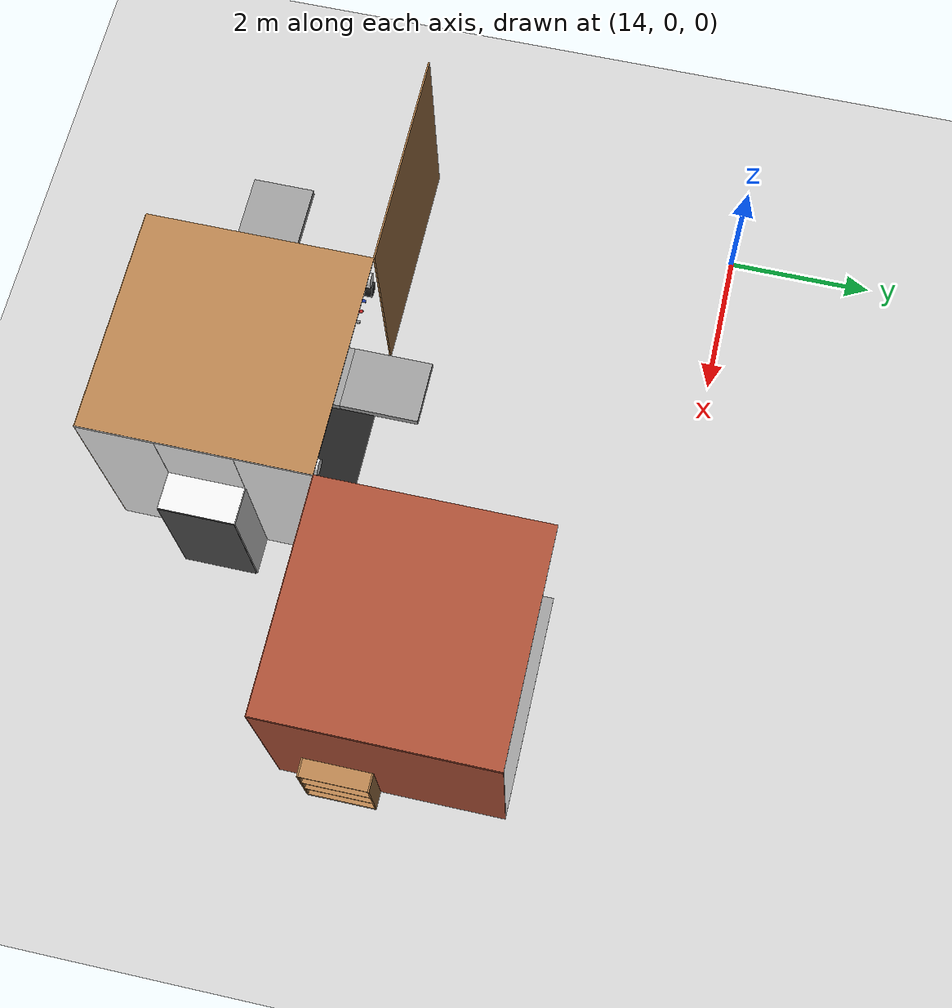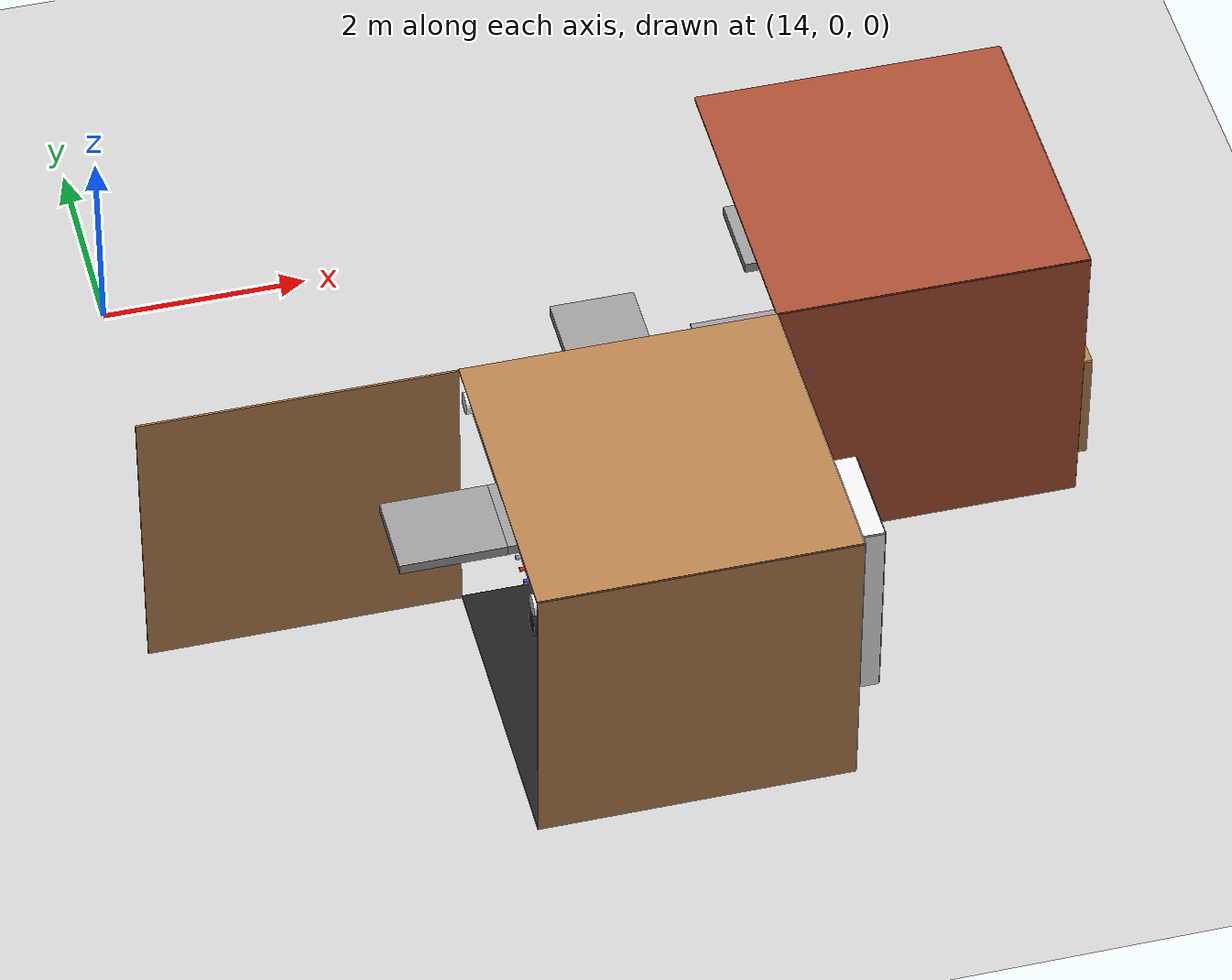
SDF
<sdf version="1.6">
 <world name="default">
  <model name="ground_plane">
   <static>1</static>
   <link name="link">
    <collision name="collision">
     <geometry><plane><normal>0 0 1</normal><size>200 200</size></plane></geometry>
     <surface><friction><ode><mu>100</mu><mu2>50</mu2></ode></friction></surface>
    </collision>
    <visual name="visual">
     <cast_shadows>0</cast_shadows>
     <geometry><plane><normal>0 0 1</normal><size>200 200</size></plane></geometry>
     <material>
      <script><uri>file://media/materials/scripts/gazebo.material</uri><name>Gazebo/Grey</name></script>
     </material>
    </visual>
   </link>
  </model>
  <model name="wall_front_7_-1_0_2">
   <static>1</static>
   <pose>21.0 -4.5 1.5 0.0 0.0 3.14</pose>
   <link name="link">
    <collision name="collision"><geometry><box><size>3 0.02 3</size></box></geometry></collision>
    <visual name="visual">
     <material>
      <script><name>Gazebo/Bricks</name><uri>file://media/materials/scripts/gazebo.material</uri></script>
     </material>
     <geometry><box><size>3 0.02 3</size></box></geometry>
    </visual>
   </link>
  </model>
  <model name="wall_left_7_-1_0_2">
   <static>1</static>
   <pose>22.5 -3.0 1.5 0.0 0.0 4.71</pose>
   <link name="link">
    <collision name="collision"><geometry><box><size>3 0.02 3</size></box></geometry></collision>
    <visual name="visual">
     <material>
      <script><name>Gazebo/Bricks</name><uri>file://media/materials/scripts/gazebo.material</uri></script>
     </material>
     <geometry><box><size>3 0.02 3</size></box></geometry>
    </visual>
   </link>
  </model>
  <model name="wall_top_7_-1_0_2">
   <static>1</static>
   <pose>21.0 -3.0 3.0 1.57 0.0 3.14</pose>
   <link name="link">
    <collision name="collision"><geometry><box><size>3 0.02 3</size></box></geometry></collision>
    <visual name="visual">
     <material>
      <script><name>Gazebo/Bricks</name><uri>file://media/materials/scripts/gazebo.material</uri></script>
     </material>
     <geometry><box><size>3 0.02 3</size></box></geometry>
    </visual>
   </link>
  </model>
  <model name="ceiling_1_7_-1_1_2">
   <pose>20.0 -3.0 2.55 0.0 0.0 4.71</pose>
   <link name="link_1">
    <visual name="visual">
     <geometry><box><size>0.8 1 0.1</size></box></geometry>
     <material>
      <script><uri>file://media/materials/scripts/gazebo.material</uri><name>Gazebo/Grey</name></script>
     </material>
    </visual>
    <collision name="collision"><geometry><box><size>0.8 1 0.1</size></box></geometry></collision>
   </link>
   <static>1</static>
  </model>
  <model name="bookshelf_7_-1_0_2">
   <static>true</static>
   <pose>22.35 -3.6063581885775 0.0 0.0 0.0 3.14</pose>
   <link name="link">
    <pose>0 0 0 0 0 -1.57</pose>
    <inertial><mass>1.0</mass></inertial>
    <collision name="back">
     <pose>0 0.005 0.6 0 0 0</pose>
     <geometry><box><size>0.9 0.01 1.2</size></box></geometry>
    </collision>
    <visual name="visual1">
     <pose>0 0.005 0.6 0 0 0</pose>
     <geometry><box><size>0.9 0.01 1.2</size></box></geometry>
     <material>
      <script><uri>file://media/materials/scripts/gazebo.material</uri><name>Gazebo/Wood</name></script>
     </material>
    </visual>
    <collision name="left_side">
     <pose>0.45 -0.195 0.6 0 0 0</pose>
     <geometry><box><size>0.02 0.4 1.2</size></box></geometry>
    </collision>
    <visual name="visual2">
     <pose>0.45 -0.195 0.6 0 0 0</pose>
     <geometry><box><size>0.02 0.4 1.2</size></box></geometry>
     <material>
      <script><uri>file://media/materials/scripts/gazebo.material</uri><name>Gazebo/Wood</name></script>
     </material>
    </visual>
    <collision name="right_side">
     <pose>-0.45 -0.195 0.6 0 0 0</pose>
     <geometry><box><size>0.02 0.4 1.2</size></box></geometry>
    </collision>
    <visual name="visual3">
     <pose>-0.45 -0.195 0.6 0 0 0</pose>
     <geometry><box><size>0.02 0.4 1.2</size></box></geometry>
     <material>
      <script><uri>file://media/materials/scripts/gazebo.material</uri><name>Gazebo/Wood</name></script>
     </material>
    </visual>
    <collision name="bottom">
     <pose>0 -0.195 0.03 0 0 0</pose>
     <geometry><box><size>0.88 0.4 0.06</size></box></geometry>
    </collision>
    <visual name="visual4">
     <pose>0 -0.195 0.03 0 0 0</pose>
     <geometry><box><size>0.88 0.4 0.06</size></box></geometry>
     <material>
      <script><uri>file://media/materials/scripts/gazebo.material</uri><name>Gazebo/Wood</name></script>
     </material>
    </visual>
    <collision name="top">
     <pose>0 -0.195 1.19 0 0 0</pose>
     <geometry><box><size>0.88 0.4 0.02</size></box></geometry>
    </collision>
    <visual name="visual5">
     <pose>0 -0.195 1.19 0 0 0</pose>
     <geometry><box><size>0.88 0.4 0.02</size></box></geometry>
     <material>
      <script><uri>file://media/materials/scripts/gazebo.material</uri><name>Gazebo/Wood</name></script>
     </material>
    </visual>
    <collision name="low_shelf">
     <pose>0 -0.195 0.43 0 0 0</pose>
     <geometry><box><size>0.88 0.4 0.02</size></box></geometry>
    </collision>
    <visual name="visual6">
     <pose>0 -0.195 0.43 0 0 0</pose>
     <geometry><box><size>0.88 0.4 0.02</size></box></geometry>
     <material>
      <script><uri>file://media/materials/scripts/gazebo.material</uri><name>Gazebo/Wood</name></script>
     </material>
    </visual>
    <collision name="high_shelf">
     <pose>0 -0.195 0.8 0 0 0</pose>
     <geometry><box><size>0.88 0.4 0.02</size></box></geometry>
    </collision>
    <visual name="visual7">
     <pose>0 -0.195 0.8 0 0 0</pose>
     <geometry><box><size>0.88 0.4 0.02</size></box></geometry>
     <material>
      <script><uri>file://media/materials/scripts/gazebo.material</uri><name>Gazebo/Wood</name></script>
     </material>
    </visual>
   </link>
  </model>
  <model name="wall_bottom_7_-1_0_2">
   <static>1</static>
   <pose>21.0 -3.0 0.0 0.0 0.0 3.14</pose>
   <link name="link">
    <collision name="collision"><geometry><box><size>3 3 0.02</size></box></geometry></collision>
    <visual name="visual">
     <material>
      <script><name>Gazebo/Grey</name><uri>file://media/materials/scripts/gazebo.material</uri></script>
     </material>
     <geometry><box><size>3 3 0.02</size></box></geometry>
    </visual>
   </link>
  </model>
  <model name="ceiling_1_6_-1_1_3">
   <pose>18.0 -4.0 2.55 0.0 0.0 3.14</pose>
   <link name="link_1">
    <visual name="visual">
     <geometry><box><size>0.8 1 0.1</size></box></geometry>
     <material>
      <script><uri>file://media/materials/scripts/gazebo.material</uri><name>Gazebo/Grey</name></script>
     </material>
    </visual>
    <collision name="collision"><geometry><box><size>0.8 1 0.1</size></box></geometry></collision>
   </link>
   <static>1</static>
  </model>
  <model name="ceiling_1_6_-2_0_2">
   <pose>18.0 -5.0 2.55 0.0 0.0 3.14</pose>
   <link name="link_1">
    <visual name="visual">
     <geometry><box><size>0.8 1 0.1</size></box></geometry>
     <material>
      <script><uri>file://media/materials/scripts/gazebo.material</uri><name>Gazebo/Grey</name></script>
     </material>
    </visual>
    <collision name="collision"><geometry><box><size>0.8 1 0.1</size></box></geometry></collision>
   </link>
   <static>1</static>
  </model>
  <model name="ceiling_1_6_-2_1_2">
   <pose>17.0 -6.0 2.55 0.0 0.0 4.71</pose>
   <link name="link_1">
    <visual name="visual">
     <geometry><box><size>0.8 1 0.1</size></box></geometry>
     <material>
      <script><uri>file://media/materials/scripts/gazebo.material</uri><name>Gazebo/Grey</name></script>
     </material>
    </visual>
    <collision name="collision"><geometry><box><size>0.8 1 0.1</size></box></geometry></collision>
   </link>
   <static>1</static>
  </model>
  <model name="bookshelf_6_-2_0_2">
   <static>true</static>
   <pose>18 -7.4 0.0 0.0 0.0 -1.57</pose>
   <link name="link">
    <pose>0 0 0 0 0 -1.57</pose>
    <inertial><mass>1.0</mass></inertial>
    <collision name="back">
     <pose>0 0.005 0.6 0 0 0</pose>
     <geometry><box><size>0.9 0.01 1.2</size></box></geometry>
    </collision>
    <visual name="visual1">
     <pose>0 0.005 0.6 0 0 0</pose>
     <geometry><box><size>0.9 0.01 1.2</size></box></geometry>
     <material>
      <script><uri>file://media/materials/scripts/gazebo.material</uri><name>Gazebo/Wood</name></script>
     </material>
    </visual>
    <collision name="left_side">
     <pose>0.45 -0.195 0.6 0 0 0</pose>
     <geometry><box><size>0.02 0.4 1.2</size></box></geometry>
    </collision>
    <visual name="visual2">
     <pose>0.45 -0.195 0.6 0 0 0</pose>
     <geometry><box><size>0.02 0.4 1.2</size></box></geometry>
     <material>
      <script><uri>file://media/materials/scripts/gazebo.material</uri><name>Gazebo/Wood</name></script>
     </material>
    </visual>
    <collision name="right_side">
     <pose>-0.45 -0.195 0.6 0 0 0</pose>
     <geometry><box><size>0.02 0.4 1.2</size></box></geometry>
    </collision>
    <visual name="visual3">
     <pose>-0.45 -0.195 0.6 0 0 0</pose>
     <geometry><box><size>0.02 0.4 1.2</size></box></geometry>
     <material>
      <script><uri>file://media/materials/scripts/gazebo.material</uri><name>Gazebo/Wood</name></script>
     </material>
    </visual>
    <collision name="bottom">
     <pose>0 -0.195 0.03 0 0 0</pose>
     <geometry><box><size>0.88 0.4 0.06</size></box></geometry>
    </collision>
    <visual name="visual4">
     <pose>0 -0.195 0.03 0 0 0</pose>
     <geometry><box><size>0.88 0.4 0.06</size></box></geometry>
     <material>
      <script><uri>file://media/materials/scripts/gazebo.material</uri><name>Gazebo/Wood</name></script>
     </material>
    </visual>
    <collision name="top">
     <pose>0 -0.195 1.19 0 0 0</pose>
     <geometry><box><size>0.88 0.4 0.02</size></box></geometry>
    </collision>
    <visual name="visual5">
     <pose>0 -0.195 1.19 0 0 0</pose>
     <geometry><box><size>0.88 0.4 0.02</size></box></geometry>
     <material>
      <script><uri>file://media/materials/scripts/gazebo.material</uri><name>Gazebo/Wood</name></script>
     </material>
    </visual>
    <collision name="low_shelf">
     <pose>0 -0.195 0.43 0 0 0</pose>
     <geometry><box><size>0.88 0.4 0.02</size></box></geometry>
    </collision>
    <visual name="visual6">
     <pose>0 -0.195 0.43 0 0 0</pose>
     <geometry><box><size>0.88 0.4 0.02</size></box></geometry>
     <material>
      <script><uri>file://media/materials/scripts/gazebo.material</uri><name>Gazebo/Wood</name></script>
     </material>
    </visual>
    <collision name="high_shelf">
     <pose>0 -0.195 0.8 0 0 0</pose>
     <geometry><box><size>0.88 0.4 0.02</size></box></geometry>
    </collision>
    <visual name="visual7">
     <pose>0 -0.195 0.8 0 0 0</pose>
     <geometry><box><size>0.88 0.4 0.02</size></box></geometry>
     <material>
      <script><uri>file://media/materials/scripts/gazebo.material</uri><name>Gazebo/Wood</name></script>
     </material>
    </visual>
   </link>
  </model>
  <model name="ceiling_1_5_-2_1_1">
   <pose>16.0 -6.0 2.55 0.0 0.0 1.57</pose>
   <link name="link_1">
    <visual name="visual">
     <geometry><box><size>0.8 1 0.1</size></box></geometry>
     <material>
      <script><uri>file://media/materials/scripts/gazebo.material</uri><name>Gazebo/Grey</name></script>
     </material>
    </visual>
    <collision name="collision"><geometry><box><size>0.8 1 0.1</size></box></geometry></collision>
   </link>
   <static>1</static>
  </model>
  <model name="wall_front_6_-2_0_2">
   <static>1</static>
   <pose>18.0 -7.5 1.5 0.0 0.0 3.14</pose>
   <link name="link">
    <collision name="collision"><geometry><box><size>3 0.02 3</size></box></geometry></collision>
    <visual name="visual">
     <material>
      <script><name>Gazebo/Wood</name><uri>file://media/materials/scripts/gazebo.material</uri></script>
     </material>
     <geometry><box><size>3 0.02 3</size></box></geometry>
    </visual>
   </link>
  </model>
  <model name="wall_top_6_-2_0_2">
   <static>1</static>
   <pose>18.0 -6.0 3.0 1.57 0.0 3.14</pose>
   <link name="link">
    <collision name="collision"><geometry><box><size>3 0.02 3</size></box></geometry></collision>
    <visual name="visual">
     <material>
      <script><name>Gazebo/Wood</name><uri>file://media/materials/scripts/gazebo.material</uri></script>
     </material>
     <geometry><box><size>3 0.02 3</size></box></geometry>
    </visual>
   </link>
  </model>
  <model name="white_pipe_left_6_-2_0_2">
   <static>1</static>
   <pose>18.0 -6.0 2.76 0.0 0.0 3.14</pose>
   <link name="link_0">
    <visual name="visual">
     <pose>-1.3 0 0 1.57 0 0</pose>
     <geometry><cylinder><radius>0.1</radius><length>3</length></cylinder></geometry>
     <material>
      <script><uri>file://media/materials/scripts/gazebo.material</uri><name>Gazebo/White</name></script>
     </material>
    </visual>
    <collision name="collision">
     <pose>-1.3 0 0 1.57 0 0</pose>
     <geometry><cylinder><radius>0.1</radius><length>3</length></cylinder></geometry>
    </collision>
   </link>
  </model>
  <model name="white_pipe_right_6_-2_0_2">
   <static>1</static>
   <pose>18.0 -6.0 2.76 0.0 0.0 3.14</pose>
   <link name="link_0">
    <visual name="visual">
     <pose>1.3 0 0 1.57 0 0</pose>
     <geometry><cylinder><radius>0.1</radius><length>3</length></cylinder></geometry>
     <material>
      <script><uri>file://media/materials/scripts/gazebo.material</uri><name>Gazebo/White</name></script>
     </material>
    </visual>
    <collision name="collision">
     <pose>1.3 0 0 1.57 0 0</pose>
     <geometry><cylinder><radius>0.1</radius><length>3</length></cylinder></geometry>
    </collision>
   </link>
  </model>
  <model name="black_pipe_right_6_-2_0_2">
   <static>1</static>
   <pose>18.0 -6.0 2.76 0.0 0.0 3.14</pose>
   <link name="link_0">
    <visual name="visual">
     <pose>1.3 0 -0.25 1.57 0 0</pose>
     <geometry><cylinder><radius>0.1</radius><length>3</length></cylinder></geometry>
     <material>
      <script><uri>file://media/materials/scripts/gazebo.material</uri><name>Gazebo/Black</name></script>
     </material>
    </visual>
    <collision name="collision">
     <pose>1.3 0 -0.25 1.57 0 0</pose>
     <geometry><cylinder><radius>0.1</radius><length>3</length></cylinder></geometry>
    </collision>
   </link>
  </model>
  <model name="grey_pipe_right_6_-2_0_2">
   <static>1</static>
   <pose>18.0 -6.0 2.76 0.0 0.0 3.14</pose>
   <link name="link_0">
    <visual name="visual">
     <pose>0.7 0 0 1.57 0 0</pose>
     <geometry><cylinder><radius>0.02</radius><length>3</length></cylinder></geometry>
     <material>
      <script><uri>file://media/materials/scripts/gazebo.material</uri><name>Gazebo/Grey</name></script>
     </material>
    </visual>
    <collision name="collision">
     <pose>0.7 0 0 1.57 0 0</pose>
     <geometry><cylinder><radius>0.02</radius><length>3</length></cylinder></geometry>
    </collision>
   </link>
  </model>
  <model name="red_pipe_right_6_-2_0_2">
   <static>1</static>
   <pose>18.0 -6.0 2.76 0.0 0.0 3.14</pose>
   <link name="link_0">
    <visual name="visual">
     <pose>0.85 0 0 1.57 0 0</pose>
     <geometry><cylinder><radius>0.02</radius><length>3</length></cylinder></geometry>
     <material>
      <script><uri>file://media/materials/scripts/gazebo.material</uri><name>Gazebo/Red</name></script>
     </material>
    </visual>
    <collision name="collision">
     <pose>0.85 0 0 1.57 0 0</pose>
     <geometry><cylinder><radius>0.02</radius><length>3</length></cylinder></geometry>
    </collision>
   </link>
  </model>
  <model name="blue_pipe_right_6_-2_0_2">
   <static>1</static>
   <pose>18.0 -6.0 2.76 0.0 0.0 3.14</pose>
   <link name="link_0">
    <visual name="visual">
     <pose>1 0 0 1.57 0 0</pose>
     <geometry><cylinder><radius>0.02</radius><length>3</length></cylinder></geometry>
     <material>
      <script><uri>file://media/materials/scripts/gazebo.material</uri><name>Gazebo/Blue</name></script>
     </material>
    </visual>
    <collision name="collision">
     <pose>1 0 0 1.57 0 0</pose>
     <geometry><cylinder><radius>0.02</radius><length>3</length></cylinder></geometry>
    </collision>
   </link>
  </model>
  <model name="white_pipe_left_1_6_-2_0_2">
   <static>1</static>
   <pose>18.0 -6.0 2.76 0.0 0.0 4.71</pose>
   <link name="link_0">
    <visual name="visual">
     <pose>-1.3 0 0 1.57 0 0</pose>
     <geometry><cylinder><radius>0.1</radius><length>3</length></cylinder></geometry>
     <material>
      <script><uri>file://media/materials/scripts/gazebo.material</uri><name>Gazebo/White</name></script>
     </material>
    </visual>
    <collision name="collision">
     <pose>-1.3 0 0 1.57 0 0</pose>
     <geometry><cylinder><radius>0.1</radius><length>3</length></cylinder></geometry>
    </collision>
   </link>
  </model>
  <model name="white_pipe_right_1_6_-2_0_2">
   <static>1</static>
   <pose>18.0 -6.0 2.76 0.0 0.0 4.71</pose>
   <link name="link_0">
    <visual name="visual">
     <pose>1.3 0 0 1.57 0 0</pose>
     <geometry><cylinder><radius>0.1</radius><length>3</length></cylinder></geometry>
     <material>
      <script><uri>file://media/materials/scripts/gazebo.material</uri><name>Gazebo/White</name></script>
     </material>
    </visual>
    <collision name="collision">
     <pose>1.3 0 0 1.57 0 0</pose>
     <geometry><cylinder><radius>0.1</radius><length>3</length></cylinder></geometry>
    </collision>
   </link>
  </model>
  <model name="black_pipe_right_1_6_-2_0_2">
   <static>1</static>
   <pose>18.0 -6.0 2.76 0.0 0.0 4.71</pose>
   <link name="link_0">
    <visual name="visual">
     <pose>1.3 0 -0.25 1.57 0 0</pose>
     <geometry><cylinder><radius>0.1</radius><length>3</length></cylinder></geometry>
     <material>
      <script><uri>file://media/materials/scripts/gazebo.material</uri><name>Gazebo/Black</name></script>
     </material>
    </visual>
    <collision name="collision">
     <pose>1.3 0 -0.25 1.57 0 0</pose>
     <geometry><cylinder><radius>0.1</radius><length>3</length></cylinder></geometry>
    </collision>
   </link>
  </model>
  <model name="grey_pipe_right_1_6_-2_0_2">
   <static>1</static>
   <pose>18.0 -6.0 2.76 0.0 0.0 4.71</pose>
   <link name="link_0">
    <visual name="visual">
     <pose>0.7 0 0 1.57 0 0</pose>
     <geometry><cylinder><radius>0.02</radius><length>3</length></cylinder></geometry>
     <material>
      <script><uri>file://media/materials/scripts/gazebo.material</uri><name>Gazebo/Grey</name></script>
     </material>
    </visual>
    <collision name="collision">
     <pose>0.7 0 0 1.57 0 0</pose>
     <geometry><cylinder><radius>0.02</radius><length>3</length></cylinder></geometry>
    </collision>
   </link>
  </model>
  <model name="red_pipe_right_1_6_-2_0_2">
   <static>1</static>
   <pose>18.0 -6.0 2.76 0.0 0.0 4.71</pose>
   <link name="link_0">
    <visual name="visual">
     <pose>0.85 0 0 1.57 0 0</pose>
     <geometry><cylinder><radius>0.02</radius><length>3</length></cylinder></geometry>
     <material>
      <script><uri>file://media/materials/scripts/gazebo.material</uri><name>Gazebo/Red</name></script>
     </material>
    </visual>
    <collision name="collision">
     <pose>0.85 0 0 1.57 0 0</pose>
     <geometry><cylinder><radius>0.02</radius><length>3</length></cylinder></geometry>
    </collision>
   </link>
  </model>
  <model name="blue_pipe_right_1_6_-2_0_2">
   <static>1</static>
   <pose>18.0 -6.0 2.76 0.0 0.0 4.71</pose>
   <link name="link_0">
    <visual name="visual">
     <pose>1 0 0 1.57 0 0</pose>
     <geometry><cylinder><radius>0.02</radius><length>3</length></cylinder></geometry>
     <material>
      <script><uri>file://media/materials/scripts/gazebo.material</uri><name>Gazebo/Blue</name></script>
     </material>
    </visual>
    <collision name="collision">
     <pose>1 0 0 1.57 0 0</pose>
     <geometry><cylinder><radius>0.02</radius><length>3</length></cylinder></geometry>
    </collision>
   </link>
  </model>
  <model name="wall_left_front_left_6_-2_0_2">
   <static>1</static>
   <pose>19.5 -7.0 1.5 0.0 0.0 4.71</pose>
   <link name="link">
    <collision name="collision"><geometry><box><size>1.0 0.02 3</size></box></geometry></collision>
    <visual name="visual">
     <material>
      <script><name>Gazebo/White</name><uri>file://media/materials/scripts/gazebo.material</uri></script>
     </material>
     <geometry><box><size>1.0 0.02 3</size></box></geometry>
    </visual>
   </link>
  </model>
  <model name="wall_left_front_right_6_-2_0_2">
   <static>1</static>
   <pose>19.5 -5.0 1.5 0.0 0.0 4.71</pose>
   <link name="link">
    <collision name="collision"><geometry><box><size>1.0 0.02 3</size></box></geometry></collision>
    <visual name="visual">
     <material>
      <script><name>Gazebo/White</name><uri>file://media/materials/scripts/gazebo.material</uri></script>
     </material>
     <geometry><box><size>1.0 0.02 3</size></box></geometry>
    </visual>
   </link>
  </model>
  <model name="wall_left_front_up_6_-2_0_2">
   <static>1</static>
   <pose>19.5 -6.0 2.5 0.0 0.0 4.71</pose>
   <link name="link">
    <collision name="collision"><geometry><box><size>1.0 0.02 1</size></box></geometry></collision>
    <visual name="visual">
     <material>
      <script><name>Gazebo/White</name><uri>file://media/materials/scripts/gazebo.material</uri></script>
     </material>
     <geometry><box><size>1.0 0.02 1</size></box></geometry>
    </visual>
   </link>
  </model>
  <model name="wall_left_inside_back_6_-2_0_2">
   <static>1</static>
   <pose>20.0 -6.0 1.0 0.0 0.0 4.71</pose>
   <link name="link">
    <collision name="collision"><geometry><box><size>1 0.02 2</size></box></geometry></collision>
    <visual name="visual">
     <material>
      <script><name>Gazebo/DarkGrey</name><uri>file://media/materials/scripts/gazebo.material</uri></script>
     </material>
     <geometry><box><size>1 0.02 2</size></box></geometry>
    </visual>
   </link>
  </model>
  <model name="wall_left_inside_left_6_-2_0_2">
   <static>1</static>
   <pose>19.75 -6.5 1.0 0.0 0.0 3.14</pose>
   <link name="link">
    <collision name="collision"><geometry><box><size>0.5 0.02 2</size></box></geometry></collision>
    <visual name="visual">
     <material>
      <script><name>Gazebo/White</name><uri>file://media/materials/scripts/gazebo.material</uri></script>
     </material>
     <geometry><box><size>0.5 0.02 2</size></box></geometry>
    </visual>
   </link>
  </model>
  <model name="wall_left_inside_right_6_-2_0_2">
   <static>1</static>
   <pose>19.75 -5.5 1.0 0.0 0.0 3.14</pose>
   <link name="link">
    <collision name="collision"><geometry><box><size>0.5 0.02 2</size></box></geometry></collision>
    <visual name="visual">
     <material>
      <script><name>Gazebo/White</name><uri>file://media/materials/scripts/gazebo.material</uri></script>
     </material>
     <geometry><box><size>0.5 0.02 2</size></box></geometry>
    </visual>
   </link>
  </model>
  <model name="wall_left_inside_top_6_-2_0_2">
   <static>1</static>
   <pose>19.75 -6.0 2.0 1.57 0.0 4.71</pose>
   <link name="link">
    <collision name="collision"><geometry><box><size>1 0.02 0.5</size></box></geometry></collision>
    <visual name="visual">
     <material>
      <script><name>Gazebo/White</name><uri>file://media/materials/scripts/gazebo.material</uri></script>
     </material>
     <geometry><box><size>1 0.02 0.5</size></box></geometry>
    </visual>
   </link>
  </model>
  <model name="wall_bottom_6_-2_0_2">
   <static>1</static>
   <pose>18.0 -6.0 0.0 0.0 0.0 3.14</pose>
   <link name="link">
    <collision name="collision"><geometry><box><size>3 3 0.02</size></box></geometry></collision>
    <visual name="visual">
     <material>
      <script><name>Gazebo/Black</name><uri>file://media/materials/scripts/gazebo.material</uri></script>
     </material>
     <geometry><box><size>3 3 0.02</size></box></geometry>
    </visual>
   </link>
  </model>
  <model name="wall_right_5_-2_0_1">
   <static>1</static>
   <pose>15.0 -4.5 1.5 0.0 0.0 3.14</pose>
   <link name="link">
    <collision name="collision"><geometry><box><size>3 0.02 3</size></box></geometry></collision>
    <visual name="visual">
     <material>
      <script><name>Gazebo/Wood</name><uri>file://media/materials/scripts/gazebo.material</uri></script>
     </material>
     <geometry><box><size>3 0.02 3</size></box></geometry>
    </visual>
   </link>
  </model>
 </world>
</sdf>
